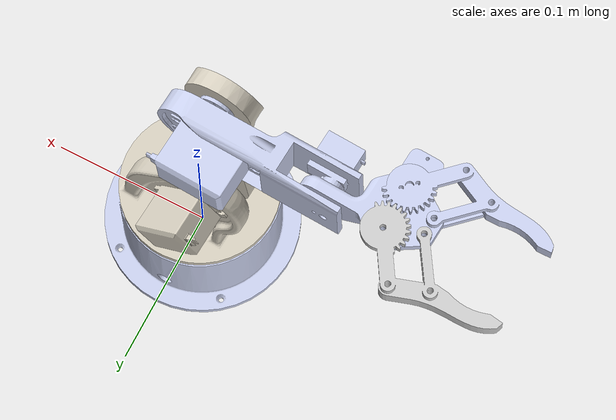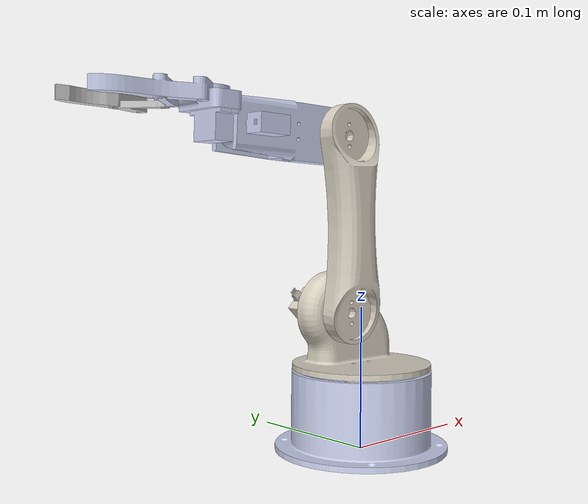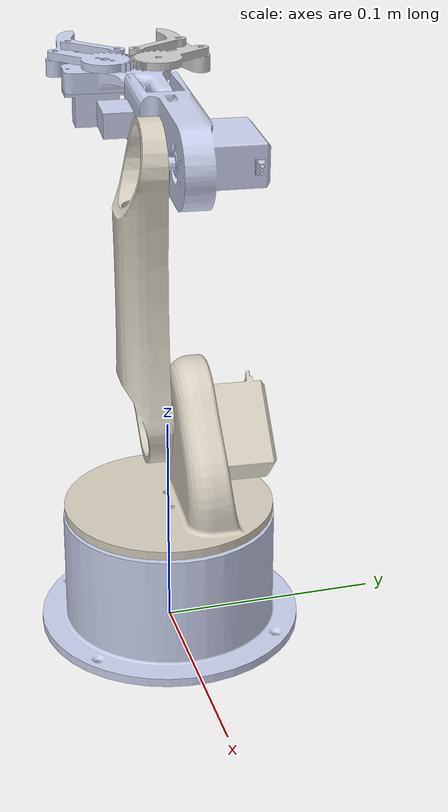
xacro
<?xml version="1.0"?>
<robot xmlns:xacro="http://www.ros.org/wiki/xacro" name="roboticarm_desc">
    <xacro:arg name="initial_positions_file" default="initial_positions.yaml" />

    <!-- Import roboticarm_desc urdf file -->
    <xacro:include filename="$(find roboticarm_desc)/urdf/robotic_arm.urdf" />

    <!-- Import control_xacro -->
    <xacro:include filename="roboticarm_desc.ros2_control.xacro" />

    <gazebo>
        <plugin filename="gz_ros2_control-system"
                name="gz_ros2_control::GazeboSimROS2ControlPlugin">
            <parameters>$(find roboticarm_moveit_config)/config/ros2_controllers.yaml</parameters>
        </plugin>

    </gazebo>
    <gazebo>
        <plugin filename="gz-sim-joint-mimic-system"
                name="gz::sim::systems::JointMimic">
            <joint>joint_5</joint>
            <mimic_joint>joint_6</mimic_joint>
            <multiplier>-1</multiplier>
        </plugin>
    </gazebo>

    <xacro:roboticarm_desc_ros2_control name="GazeboSystem" initial_positions_file="$(arg initial_positions_file)"/>
</robot>

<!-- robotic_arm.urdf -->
<robot
  name="roboticarm_desc">
  <link
    name="base_link">
    <inertial>
      <origin
        xyz="-1.74565115521112E-08 0.000952884303413011 0.0221505545989223"
        rpy="0 0 0" />
      <mass
        value="0.0946962180846406" />
      <inertia
        ixx="0.000135059011662809"
        ixy="-3.74631591816118E-11"
        ixz="-1.84579557269977E-12"
        iyy="0.000128557317669127"
        iyz="3.85016392647366E-06"
        izz="0.000205655215325431" />
    </inertial>
    <visual>
      <origin
        xyz="0 0 0"
        rpy="0 0 0" />
      <geometry>
        <mesh
          filename="package://roboticarm_desc/meshes/base_link.STL" />
      </geometry>
      <material
        name="">
        <color
          rgba="0.792156862745098 0.819607843137255 0.933333333333333 1" />
      </material>
    </visual>
    <collision>
      <origin
        xyz="0 0 0"
        rpy="0 0 0" />
      <geometry>
        <mesh
          filename="package://roboticarm_desc/meshes/base_link.STL" />
      </geometry>
    </collision>
  </link>
  <link
    name="link_1">
    <inertial>
      <origin
        xyz="0.000831323898337343 0.00454672482986223 0.00190351834728859"
        rpy="0 0 0" />
      <mass
        value="2.066908638872" />
      <inertia
        ixx="5.93109549248364E-05"
        ixy="-6.73127407715459E-06"
        ixz="-5.80295277136355E-07"
        iyy="6.52041562002642E-05"
        iyz="-6.58179347262941E-06"
        izz="7.27757911682154E-05" />
    </inertial>
    <visual>
      <origin
        xyz="0 0 0"
        rpy="0 0 0" />
      <geometry>
        <mesh
          filename="package://roboticarm_desc/meshes/link_1.STL" />
      </geometry>
      <material
        name="">
        <color
          rgba="0.843137254901961 0.815686274509804 0.752941176470588 1" />
      </material>
    </visual>
    <collision>
      <origin
        xyz="0 0 0"
        rpy="0 0 0" />
      <geometry>
        <mesh
          filename="package://roboticarm_desc/meshes/link_1.STL" />
      </geometry>
    </collision>
  </link>
  <joint
    name="joint_1"
    type="revolute">
    <origin
      xyz="0 0 0.0574"
      rpy="1.5708 0 3.0761" />
    <parent
      link="base_link" />
    <child
      link="link_1" />
    <axis
      xyz="0 1 0" />
    <limit
      lower="-3.142"
      upper="3.142"
      effort="300"
      velocity="3" />
  </joint>
  <link
    name="link_2">
    <inertial>
      <origin
        xyz="-0.00230701090313169 0.025152631684603 -0.0370544089765316"
        rpy="0 0 0" />
      <mass
        value="0.0985691492518185" />
      <inertia
        ixx="0.000113580940734067"
        ixy="1.95408708762653E-07"
        ixz="1.85894731817726E-06"
        iyy="0.000116780844668397"
        iyz="-2.45203634952698E-07"
        izz="1.70145460046509E-05" />
    </inertial>
    <visual>
      <origin
        xyz="0 0 0"
        rpy="0 0 0" />
      <geometry>
        <mesh
          filename="package://roboticarm_desc/meshes/link_2.STL" />
      </geometry>
      <material
        name="">
        <color
          rgba="0.843137254901961 0.815686274509804 0.752941176470588 1" />
      </material>
    </visual>
    <collision>
      <origin
        xyz="0 0 0"
        rpy="0 0 0" />
      <geometry>
        <mesh
          filename="package://roboticarm_desc/meshes/link_2.STL" />
      </geometry>
    </collision>
  </link>
  <joint
    name="joint_2"
    type="revolute">
    <origin
      xyz="0.01391 0.04028 -0.02"
      rpy="1.5708 0 -0.026125" />
    <parent
      link="link_1" />
    <child
      link="link_2" />
    <axis
      xyz="0 -1 0" />
    <limit
      lower="-1.57"
      upper="1.57"
      effort="200"
      velocity="3" />
  </joint>
  <link
    name="link_3">
    <inertial>
      <origin
        xyz="0.0119274145245473 0.0281765061774894 4.69192763711268E-05"
        rpy="0 0 0" />
      <mass
        value="0.0714902683975526" />
      <inertia
        ixx="1.30083784905906E-05"
        ixy="5.89357510363436E-07"
        ixz="-5.2024675595863E-08"
        iyy="4.65154633143084E-05"
        iyz="-2.68276088899909E-09"
        izz="4.70864710905405E-05" />
    </inertial>
    <visual>
      <origin
        xyz="0 0 0"
        rpy="0 0 0" />
      <geometry>
        <mesh
          filename="package://roboticarm_desc/meshes/link_3.STL" />
      </geometry>
      <material
        name="">
        <color
          rgba="0.792156862745098 0.819607843137255 0.933333333333333 1" />
      </material>
    </visual>
    <collision>
      <origin
        xyz="0 0 0"
        rpy="0 0 0" />
      <geometry>
        <mesh
          filename="package://roboticarm_desc/meshes/link_3.STL" />
      </geometry>
    </collision>
  </link>
  <joint
    name="joint_3"
    type="revolute">
    <origin
      xyz="0.010223 0.0684 -0.12074"
      rpy="-3.1416 0.072029 0" />
    <parent
      link="link_2" />
    <child
      link="link_3" />
    <axis
      xyz="0 1 0" />
    <limit
      lower="-1.5708"
      upper="1.5708"
      effort="200"
      velocity="3" />
  </joint>
  <link
    name="link_4">
    <inertial>
      <origin
        xyz="0.00844737677424334 0.00467043133983275 0.0170044090379459"
        rpy="0 0 0" />
      <mass
        value="0.0238931999541876" />
      <inertia
        ixx="7.60188798036556E-06"
        ixy="-4.14365108627786E-07"
        ixz="-1.933109545339E-06"
        iyy="1.02338809467779E-05"
        iyz="-1.31602817133816E-06"
        izz="4.29933795885179E-06" />
    </inertial>
    <visual>
      <origin
        xyz="0 0 0"
        rpy="0 0 0" />
      <geometry>
        <mesh
          filename="package://roboticarm_desc/meshes/link_4.STL" />
      </geometry>
      <material
        name="">
        <color
          rgba="0.792156862745098 0.819607843137255 0.933333333333333 1" />
      </material>
    </visual>
    <collision>
      <origin
        xyz="0 0 0"
        rpy="0 0 0" />
      <geometry>
        <mesh
          filename="package://roboticarm_desc/meshes/link_4.STL" />
      </geometry>
    </collision>
  </link>
  <joint
    name="joint_4"
    type="revolute">
    <origin
      xyz="0.06545 0.04032 -5.0936E-05"
      rpy="1.5789 0 1.5708" />
    <parent
      link="link_3" />
    <child
      link="link_4" />
    <axis
      xyz="-1 0 0" />
    <limit
      lower="-1.5708"
      upper="1.5708"
      effort="200"
      velocity="3" />
  </joint>
  <link
    name="link_5">
    <inertial>
      <origin
        xyz="0.00542306221289153 0.00795132738028109 0.0600915122440204"
        rpy="0 0 0" />
      <mass
        value="0.0254298960035312" />
      <inertia
        ixx="4.14565743139581E-06"
        ixy="3.68124037871294E-08"
        ixz="5.47871667594063E-08"
        iyy="4.99730356018642E-06"
        iyz="-5.7311094331318E-15"
        izz="1.73159733678277E-06" />
    </inertial>
    <visual>
      <origin xyz="0 0 -0.04" rpy="0 0 0"/>
      <geometry>
        <mesh
          filename="package://roboticarm_desc/meshes/link_5.STL" />
      </geometry>
      <material
        name="">
        <color
          rgba="0.792156862745098 0.819607843137255 0.933333333333333 1" />
      </material>
    </visual>
    <collision>
      <origin xyz="0 0 -0.04" rpy="0 0 0"/>
      <geometry>
        <mesh
          filename="package://roboticarm_desc/meshes/link_5.STL" />
      </geometry>
    </collision>
  </link>
  <joint
    name="joint_5"
    type="revolute">
    <origin xyz="0 0 0.04" rpy="0 0 0"/>
    <parent
      link="link_4" />
    <child
      link="link_5" />
    <axis
      xyz="0 1 0" />
    <limit lower="0" upper="0.543" effort="200" velocity="2"/>
  </joint>
  <link name="link_6">
    <inertial>
      <origin xyz="0 0 0" rpy="0 0 0"/>
      <mass value="0.02"/>
      <inertia ixx="1e-5" iyy="1e-5" izz="1e-5"
              ixy="0" ixz="0" iyz="0"/>
    </inertial>

    <visual>
      <origin xyz="0 0 -0.04" rpy="0 0 0"/>
      <geometry>
        <mesh filename="package://roboticarm_desc/meshes/link_6.STL"/>
      </geometry>
      <material name="">
        <color rgba="0.8 0.8 0.8 1"/>
      </material>
    </visual>

    <collision>
      <origin xyz="0 0 -0.04" rpy="0 0 0"/>
      <geometry>
        <mesh filename="package://roboticarm_desc/meshes/link_6.STL"/>
      </geometry>
    </collision>
  </link>
  <joint name="joint_6" type="revolute">
    <origin xyz="0 0 0.04" rpy="0 0 0"/>
    <parent link="link_4"/>
    <child link="link_6"/>
    <axis xyz="0 1 0"/>
    <limit lower="-1.57" upper="1.57" effort="100" velocity="2"/>
  </joint>

  <link name="tcp_link"/>

  <joint name="tcp_joint" type="fixed">
    <parent link="link_4"/>
    <child link="tcp_link"/>
    <origin xyz="0 0 0.09" rpy="0 0 0"/>
  </joint>

  <ros2_control name="MyRobotSystem" type="system">
  <hardware>
    <plugin>gz_ros2_control/GazeboSystem</plugin>
  </hardware>

  <joint name="joint_1">
    <command_interface name="position"/>
    <state_interface name="position"/>
  </joint>

  <joint name="joint_2">
    <command_interface name="position"/>
    <state_interface name="position"/>
  </joint>

  <joint name="joint_3">
    <command_interface name="position"/>
    <state_interface name="position"/>
  </joint>

  <joint name="joint_4">
    <command_interface name="position"/>
    <state_interface name="position"/>
  </joint>

  <joint name="joint_5">
    <command_interface name="position"/>
    <state_interface name="position"/>
  </joint>

  <joint name="joint_6">
    <state_interface name="position"/>
  </joint>

  </ros2_control>

</robot>
